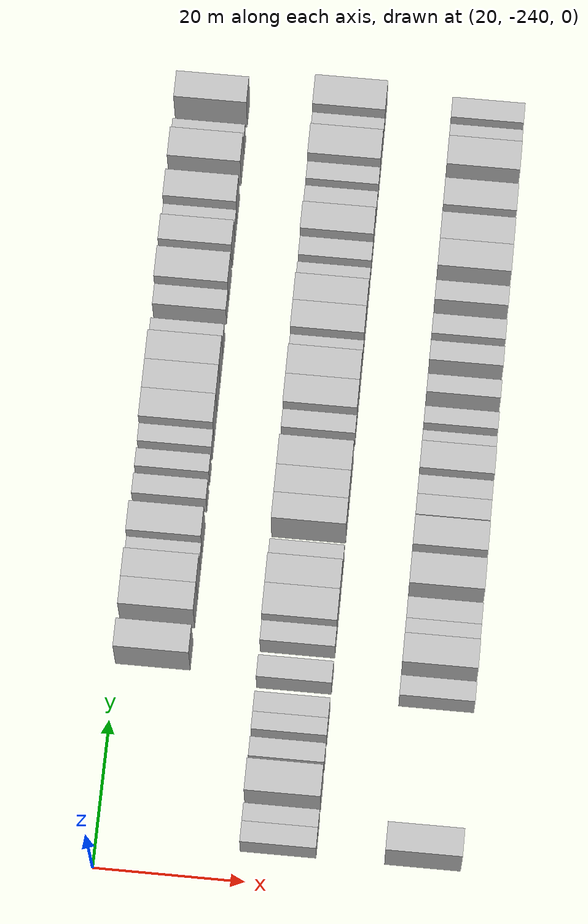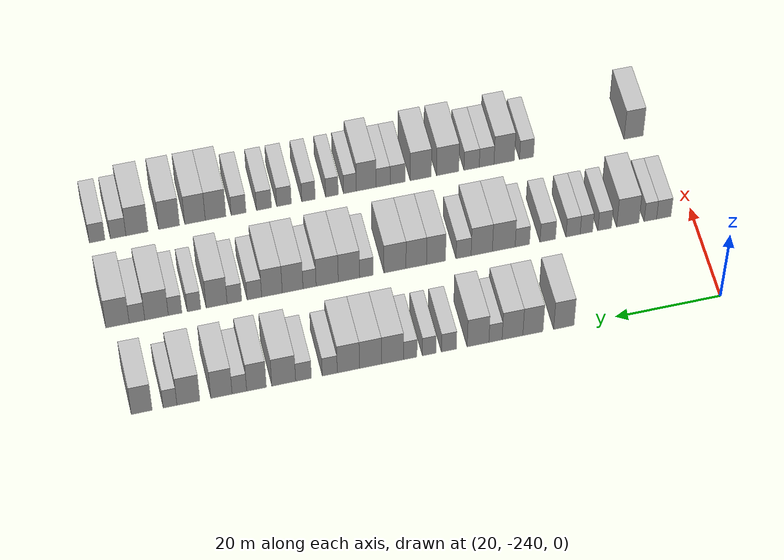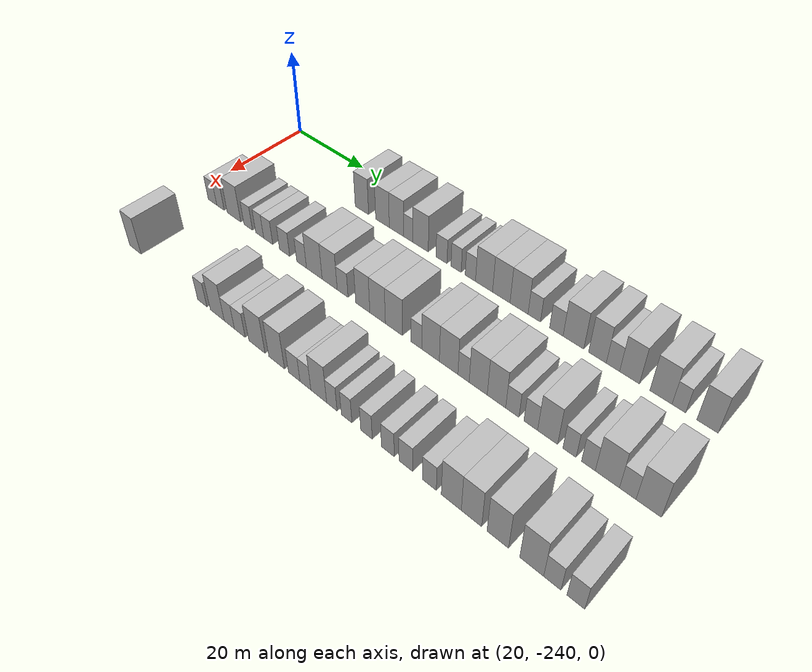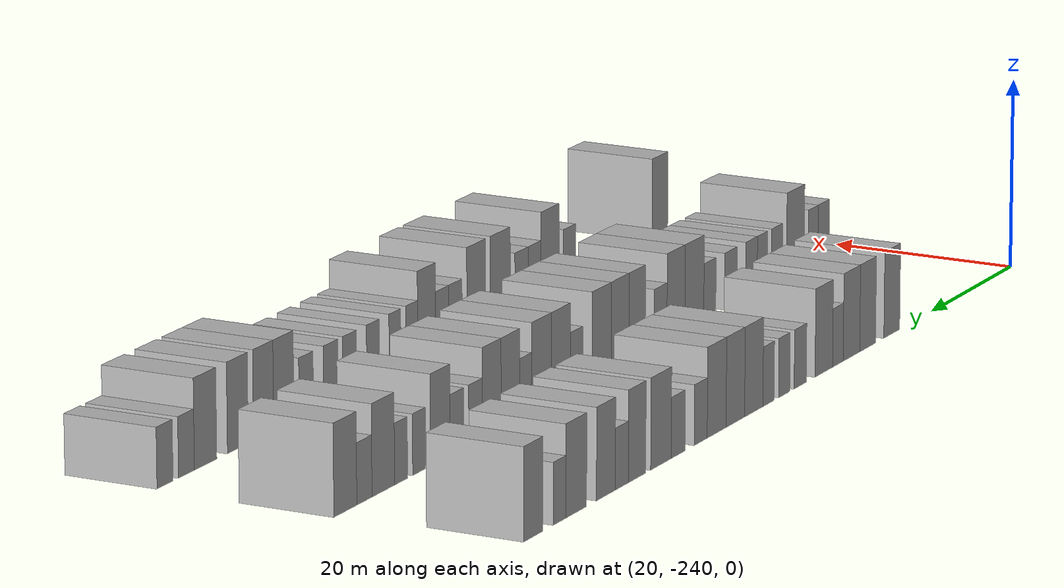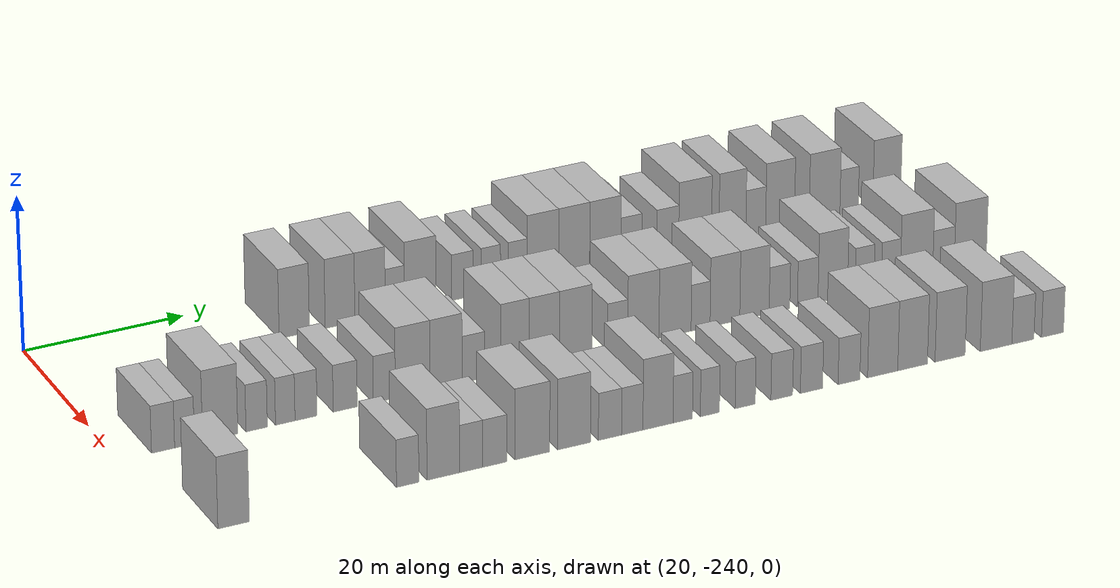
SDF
<sdf version="1.6">
 <world name="default">
  <model name="building_1">
   <static>1</static>
   <pose>25.0000 -210.2446 0 0.000000 0.000000 0.000000</pose>
   <link name="link">
    <pose>0 0 4.50 0 0 0</pose>
    <collision name="collision"><geometry><box><size>10.0000 3.8369 9.0000</size></box></geometry></collision>
    <visual name="visual">
     <cast_shadows>0</cast_shadows>
     <geometry><box><size>10.0000 3.8369 9.0000</size></box></geometry>
     <material>
      <script>
       <uri>model://HANNAS_wall/materials/scripts</uri>
       <uri>model://HANNAS_wall/materials/textures</uri>
       <name>vrc/HANNAS_wall</name>
      </script>
     </material>
    </visual>
   </link>
  </model>
  <model name="building_2">
   <static>1</static>
   <pose>25.0000 -204.4318 0 0.000000 0.000000 0.000000</pose>
   <link name="link">
    <pose>0 0 4.50 0 0 0</pose>
    <collision name="collision"><geometry><box><size>10.0000 3.7886 9.0000</size></box></geometry></collision>
    <visual name="visual">
     <cast_shadows>0</cast_shadows>
     <geometry><box><size>10.0000 3.7886 9.0000</size></box></geometry>
     <material>
      <script>
       <uri>model://HANNAS_wall/materials/scripts</uri>
       <uri>model://HANNAS_wall/materials/textures</uri>
       <name>vrc/HANNAS_wall</name>
      </script>
     </material>
    </visual>
   </link>
  </model>
  <model name="building_3">
   <static>1</static>
   <pose>25.0000 -200.5915 0 0.000000 0.000000 0.000000</pose>
   <link name="link">
    <pose>0 0 4.50 0 0 0</pose>
    <collision name="collision"><geometry><box><size>10.0000 3.8921 9.0000</size></box></geometry></collision>
    <visual name="visual">
     <cast_shadows>0</cast_shadows>
     <geometry><box><size>10.0000 3.8921 9.0000</size></box></geometry>
     <material>
      <script>
       <uri>model://HANNAS_wall/materials/scripts</uri>
       <uri>model://HANNAS_wall/materials/textures</uri>
       <name>vrc/HANNAS_wall</name>
      </script>
     </material>
    </visual>
   </link>
  </model>
  <model name="building_4">
   <static>1</static>
   <pose>25.0000 -197.4109 0 0.000000 0.000000 0.000000</pose>
   <link name="link">
    <pose>0 0 3.00 0 0 0</pose>
    <collision name="collision"><geometry><box><size>10.0000 2.4689 6.0000</size></box></geometry></collision>
    <visual name="visual">
     <cast_shadows>0</cast_shadows>
     <geometry><box><size>10.0000 2.4689 6.0000</size></box></geometry>
     <material>
      <script>
       <uri>model://HANNAS_wall/materials/scripts</uri>
       <uri>model://HANNAS_wall/materials/textures</uri>
       <name>vrc/HANNAS_wall</name>
      </script>
     </material>
    </visual>
   </link>
  </model>
  <model name="building_5">
   <static>1</static>
   <pose>25.0000 -194.1410 0 0.000000 0.000000 0.000000</pose>
   <link name="link">
    <pose>0 0 4.50 0 0 0</pose>
    <collision name="collision"><geometry><box><size>10.0000 4.0709 9.0000</size></box></geometry></collision>
    <visual name="visual">
     <cast_shadows>0</cast_shadows>
     <geometry><box><size>10.0000 4.0709 9.0000</size></box></geometry>
     <material>
      <script>
       <uri>model://HANNAS_wall/materials/scripts</uri>
       <uri>model://HANNAS_wall/materials/textures</uri>
       <name>vrc/HANNAS_wall</name>
      </script>
     </material>
    </visual>
   </link>
  </model>
  <model name="building_6">
   <static>1</static>
   <pose>25.0000 -188.7072 0 0.000000 0.000000 0.000000</pose>
   <link name="link">
    <pose>0 0 3.00 0 0 0</pose>
    <collision name="collision"><geometry><box><size>10.0000 2.7967 6.0000</size></box></geometry></collision>
    <visual name="visual">
     <cast_shadows>0</cast_shadows>
     <geometry><box><size>10.0000 2.7967 6.0000</size></box></geometry>
     <material>
      <script>
       <uri>model://HANNAS_wall/materials/scripts</uri>
       <uri>model://HANNAS_wall/materials/textures</uri>
       <name>vrc/HANNAS_wall</name>
      </script>
     </material>
    </visual>
   </link>
  </model>
  <model name="building_7">
   <static>1</static>
   <pose>25.0000 -185.0412 0 0.000000 0.000000 0.000000</pose>
   <link name="link">
    <pose>0 0 3.00 0 0 0</pose>
    <collision name="collision"><geometry><box><size>10.0000 2.5354 6.0000</size></box></geometry></collision>
    <visual name="visual">
     <cast_shadows>0</cast_shadows>
     <geometry><box><size>10.0000 2.5354 6.0000</size></box></geometry>
     <material>
      <script>
       <uri>model://HANNAS_wall/materials/scripts</uri>
       <uri>model://HANNAS_wall/materials/textures</uri>
       <name>vrc/HANNAS_wall</name>
      </script>
     </material>
    </visual>
   </link>
  </model>
  <model name="building_8">
   <static>1</static>
   <pose>25.0000 -181.5201 0 0.000000 0.000000 0.000000</pose>
   <link name="link">
    <pose>0 0 3.00 0 0 0</pose>
    <collision name="collision"><geometry><box><size>10.0000 2.5069 6.0000</size></box></geometry></collision>
    <visual name="visual">
     <cast_shadows>0</cast_shadows>
     <geometry><box><size>10.0000 2.5069 6.0000</size></box></geometry>
     <material>
      <script>
       <uri>model://HANNAS_wall/materials/scripts</uri>
       <uri>model://HANNAS_wall/materials/textures</uri>
       <name>vrc/HANNAS_wall</name>
      </script>
     </material>
    </visual>
   </link>
  </model>
  <model name="building_9">
   <static>1</static>
   <pose>25.0000 -178.2277 0 0.000000 0.000000 0.000000</pose>
   <link name="link">
    <pose>0 0 4.50 0 0 0</pose>
    <collision name="collision"><geometry><box><size>10.0000 4.0778 9.0000</size></box></geometry></collision>
    <visual name="visual">
     <cast_shadows>0</cast_shadows>
     <geometry><box><size>10.0000 4.0778 9.0000</size></box></geometry>
     <material>
      <script>
       <uri>model://HANNAS_wall/materials/scripts</uri>
       <uri>model://HANNAS_wall/materials/textures</uri>
       <name>vrc/HANNAS_wall</name>
      </script>
     </material>
    </visual>
   </link>
  </model>
  <model name="building_10">
   <static>1</static>
   <pose>25.0000 -174.1491 0 0.000000 0.000000 0.000000</pose>
   <link name="link">
    <pose>0 0 4.50 0 0 0</pose>
    <collision name="collision"><geometry><box><size>10.0000 4.0794 9.0000</size></box></geometry></collision>
    <visual name="visual">
     <cast_shadows>0</cast_shadows>
     <geometry><box><size>10.0000 4.0794 9.0000</size></box></geometry>
     <material>
      <script>
       <uri>model://HANNAS_wall/materials/scripts</uri>
       <uri>model://HANNAS_wall/materials/textures</uri>
       <name>vrc/HANNAS_wall</name>
      </script>
     </material>
    </visual>
   </link>
  </model>
  <model name="building_11">
   <static>1</static>
   <pose>25.0000 -170.0534 0 0.000000 0.000000 0.000000</pose>
   <link name="link">
    <pose>0 0 4.50 0 0 0</pose>
    <collision name="collision"><geometry><box><size>10.0000 4.1120 9.0000</size></box></geometry></collision>
    <visual name="visual">
     <cast_shadows>0</cast_shadows>
     <geometry><box><size>10.0000 4.1120 9.0000</size></box></geometry>
     <material>
      <script>
       <uri>model://HANNAS_wall/materials/scripts</uri>
       <uri>model://HANNAS_wall/materials/textures</uri>
       <name>vrc/HANNAS_wall</name>
      </script>
     </material>
    </visual>
   </link>
  </model>
  <model name="building_12">
   <static>1</static>
   <pose>25.0000 -166.6129 0 0.000000 0.000000 0.000000</pose>
   <link name="link">
    <pose>0 0 3.00 0 0 0</pose>
    <collision name="collision"><geometry><box><size>10.0000 2.7691 6.0000</size></box></geometry></collision>
    <visual name="visual">
     <cast_shadows>0</cast_shadows>
     <geometry><box><size>10.0000 2.7691 6.0000</size></box></geometry>
     <material>
      <script>
       <uri>model://HANNAS_wall/materials/scripts</uri>
       <uri>model://HANNAS_wall/materials/textures</uri>
       <name>vrc/HANNAS_wall</name>
      </script>
     </material>
    </visual>
   </link>
  </model>
  <model name="building_13">
   <static>1</static>
   <pose>25.0000 -161.7712 0 0.000000 0.000000 0.000000</pose>
   <link name="link">
    <pose>0 0 3.00 0 0 0</pose>
    <collision name="collision"><geometry><box><size>10.0000 2.9143 6.0000</size></box></geometry></collision>
    <visual name="visual">
     <cast_shadows>0</cast_shadows>
     <geometry><box><size>10.0000 2.9143 6.0000</size></box></geometry>
     <material>
      <script>
       <uri>model://HANNAS_wall/materials/scripts</uri>
       <uri>model://HANNAS_wall/materials/textures</uri>
       <name>vrc/HANNAS_wall</name>
      </script>
     </material>
    </visual>
   </link>
  </model>
  <model name="building_14">
   <static>1</static>
   <pose>25.0000 -158.1254 0 0.000000 0.000000 0.000000</pose>
   <link name="link">
    <pose>0 0 4.50 0 0 0</pose>
    <collision name="collision"><geometry><box><size>10.0000 4.3773 9.0000</size></box></geometry></collision>
    <visual name="visual">
     <cast_shadows>0</cast_shadows>
     <geometry><box><size>10.0000 4.3773 9.0000</size></box></geometry>
     <material>
      <script>
       <uri>model://HANNAS_wall/materials/scripts</uri>
       <uri>model://HANNAS_wall/materials/textures</uri>
       <name>vrc/HANNAS_wall</name>
      </script>
     </material>
    </visual>
   </link>
  </model>
  <model name="building_15">
   <static>1</static>
   <pose>25.0000 -153.1305 0 0.000000 0.000000 0.000000</pose>
   <link name="link">
    <pose>0 0 4.50 0 0 0</pose>
    <collision name="collision"><geometry><box><size>10.0000 3.6125 9.0000</size></box></geometry></collision>
    <visual name="visual">
     <cast_shadows>0</cast_shadows>
     <geometry><box><size>10.0000 3.6125 9.0000</size></box></geometry>
     <material>
      <script>
       <uri>model://HANNAS_wall/materials/scripts</uri>
       <uri>model://HANNAS_wall/materials/textures</uri>
       <name>vrc/HANNAS_wall</name>
      </script>
     </material>
    </visual>
   </link>
  </model>
  <model name="building_16">
   <static>1</static>
   <pose>25.0000 -149.9911 0 0.000000 0.000000 0.000000</pose>
   <link name="link">
    <pose>0 0 3.00 0 0 0</pose>
    <collision name="collision"><geometry><box><size>10.0000 2.6663 6.0000</size></box></geometry></collision>
    <visual name="visual">
     <cast_shadows>0</cast_shadows>
     <geometry><box><size>10.0000 2.6663 6.0000</size></box></geometry>
     <material>
      <script>
       <uri>model://HANNAS_wall/materials/scripts</uri>
       <uri>model://HANNAS_wall/materials/textures</uri>
       <name>vrc/HANNAS_wall</name>
      </script>
     </material>
    </visual>
   </link>
  </model>
  <model name="building_17">
   <static>1</static>
   <pose>25.0000 -146.7138 0 0.000000 0.000000 0.000000</pose>
   <link name="link">
    <pose>0 0 4.50 0 0 0</pose>
    <collision name="collision"><geometry><box><size>10.0000 3.8884 9.0000</size></box></geometry></collision>
    <visual name="visual">
     <cast_shadows>0</cast_shadows>
     <geometry><box><size>10.0000 3.8884 9.0000</size></box></geometry>
     <material>
      <script>
       <uri>model://HANNAS_wall/materials/scripts</uri>
       <uri>model://HANNAS_wall/materials/textures</uri>
       <name>vrc/HANNAS_wall</name>
      </script>
     </material>
    </visual>
   </link>
  </model>
  <model name="building_18">
   <static>1</static>
   <pose>25.0000 -140.6775 0 0.000000 0.000000 0.000000</pose>
   <link name="link">
    <pose>0 0 4.50 0 0 0</pose>
    <collision name="collision"><geometry><box><size>10.0000 4.1843 9.0000</size></box></geometry></collision>
    <visual name="visual">
     <cast_shadows>0</cast_shadows>
     <geometry><box><size>10.0000 4.1843 9.0000</size></box></geometry>
     <material>
      <script>
       <uri>model://HANNAS_wall/materials/scripts</uri>
       <uri>model://HANNAS_wall/materials/textures</uri>
       <name>vrc/HANNAS_wall</name>
      </script>
     </material>
    </visual>
   </link>
  </model>
  <model name="building_19">
   <static>1</static>
   <pose>25.0000 -137.3348 0 0.000000 0.000000 0.000000</pose>
   <link name="link">
    <pose>0 0 3.00 0 0 0</pose>
    <collision name="collision"><geometry><box><size>10.0000 2.5011 6.0000</size></box></geometry></collision>
    <visual name="visual">
     <cast_shadows>0</cast_shadows>
     <geometry><box><size>10.0000 2.5011 6.0000</size></box></geometry>
     <material>
      <script>
       <uri>model://HANNAS_wall/materials/scripts</uri>
       <uri>model://HANNAS_wall/materials/textures</uri>
       <name>vrc/HANNAS_wall</name>
      </script>
     </material>
    </visual>
   </link>
  </model>
  <model name="building_20">
   <static>1</static>
   <pose>25.0000 -132.1780 0 0.000000 0.000000 0.000000</pose>
   <link name="link">
    <pose>0 0 4.50 0 0 0</pose>
    <collision name="collision"><geometry><box><size>10.0000 3.8125 9.0000</size></box></geometry></collision>
    <visual name="visual">
     <cast_shadows>0</cast_shadows>
     <geometry><box><size>10.0000 3.8125 9.0000</size></box></geometry>
     <material>
      <script>
       <uri>model://HANNAS_wall/materials/scripts</uri>
       <uri>model://HANNAS_wall/materials/textures</uri>
       <name>vrc/HANNAS_wall</name>
      </script>
     </material>
    </visual>
   </link>
  </model>
  <model name="building_120">
   <static>1</static>
   <pose>44.0000 -234.6004 0 0.000000 0.000000 0.000000</pose>
   <link name="link">
    <pose>0 0 3.00 0 0 0</pose>
    <collision name="collision"><geometry><box><size>10.0000 2.7992 6.0000</size></box></geometry></collision>
    <visual name="visual">
     <cast_shadows>0</cast_shadows>
     <geometry><box><size>10.0000 2.7992 6.0000</size></box></geometry>
     <material>
      <script>
       <uri>model://HANNAS_wall/materials/scripts</uri>
       <uri>model://HANNAS_wall/materials/textures</uri>
       <name>vrc/HANNAS_wall</name>
      </script>
     </material>
    </visual>
   </link>
  </model>
  <model name="building_121">
   <static>1</static>
   <pose>44.0000 -231.9981 0 0.000000 0.000000 0.000000</pose>
   <link name="link">
    <pose>0 0 3.00 0 0 0</pose>
    <collision name="collision"><geometry><box><size>10.0000 2.4055 6.0000</size></box></geometry></collision>
    <visual name="visual">
     <cast_shadows>0</cast_shadows>
     <geometry><box><size>10.0000 2.4055 6.0000</size></box></geometry>
     <material>
      <script>
       <uri>model://HANNAS_wall/materials/scripts</uri>
       <uri>model://HANNAS_wall/materials/textures</uri>
       <name>vrc/HANNAS_wall</name>
      </script>
     </material>
    </visual>
   </link>
  </model>
  <model name="building_122">
   <static>1</static>
   <pose>44.0000 -227.6444 0 0.000000 0.000000 0.000000</pose>
   <link name="link">
    <pose>0 0 4.50 0 0 0</pose>
    <collision name="collision"><geometry><box><size>10.0000 4.3019 9.0000</size></box></geometry></collision>
    <visual name="visual">
     <cast_shadows>0</cast_shadows>
     <geometry><box><size>10.0000 4.3019 9.0000</size></box></geometry>
     <material>
      <script>
       <uri>model://HANNAS_wall/materials/scripts</uri>
       <uri>model://HANNAS_wall/materials/textures</uri>
       <name>vrc/HANNAS_wall</name>
      </script>
     </material>
    </visual>
   </link>
  </model>
  <model name="building_123">
   <static>1</static>
   <pose>44.0000 -223.1810 0 0.000000 0.000000 0.000000</pose>
   <link name="link">
    <pose>0 0 3.00 0 0 0</pose>
    <collision name="collision"><geometry><box><size>10.0000 2.6249 6.0000</size></box></geometry></collision>
    <visual name="visual">
     <cast_shadows>0</cast_shadows>
     <geometry><box><size>10.0000 2.6249 6.0000</size></box></geometry>
     <material>
      <script>
       <uri>model://HANNAS_wall/materials/scripts</uri>
       <uri>model://HANNAS_wall/materials/textures</uri>
       <name>vrc/HANNAS_wall</name>
      </script>
     </material>
    </visual>
   </link>
  </model>
  <model name="building_124">
   <static>1</static>
   <pose>44.0000 -219.6663 0 0.000000 0.000000 0.000000</pose>
   <link name="link">
    <pose>0 0 3.00 0 0 0</pose>
    <collision name="collision"><geometry><box><size>10.0000 2.4046 6.0000</size></box></geometry></collision>
    <visual name="visual">
     <cast_shadows>0</cast_shadows>
     <geometry><box><size>10.0000 2.4046 6.0000</size></box></geometry>
     <material>
      <script>
       <uri>model://HANNAS_wall/materials/scripts</uri>
       <uri>model://HANNAS_wall/materials/textures</uri>
       <name>vrc/HANNAS_wall</name>
      </script>
     </material>
    </visual>
   </link>
  </model>
  <model name="building_125">
   <static>1</static>
   <pose>44.0000 -217.1004 0 0.000000 0.000000 0.000000</pose>
   <link name="link">
    <pose>0 0 3.00 0 0 0</pose>
    <collision name="collision"><geometry><box><size>10.0000 2.7271 6.0000</size></box></geometry></collision>
    <visual name="visual">
     <cast_shadows>0</cast_shadows>
     <geometry><box><size>10.0000 2.7271 6.0000</size></box></geometry>
     <material>
      <script>
       <uri>model://HANNAS_wall/materials/scripts</uri>
       <uri>model://HANNAS_wall/materials/textures</uri>
       <name>vrc/HANNAS_wall</name>
      </script>
     </material>
    </visual>
   </link>
  </model>
  <model name="building_126">
   <static>1</static>
   <pose>44.0000 -212.2465 0 0.000000 0.000000 0.000000</pose>
   <link name="link">
    <pose>0 0 3.00 0 0 0</pose>
    <collision name="collision"><geometry><box><size>10.0000 2.9808 6.0000</size></box></geometry></collision>
    <visual name="visual">
     <cast_shadows>0</cast_shadows>
     <geometry><box><size>10.0000 2.9808 6.0000</size></box></geometry>
     <material>
      <script>
       <uri>model://HANNAS_wall/materials/scripts</uri>
       <uri>model://HANNAS_wall/materials/textures</uri>
       <name>vrc/HANNAS_wall</name>
      </script>
     </material>
    </visual>
   </link>
  </model>
  <model name="building_127">
   <static>1</static>
   <pose>44.0000 -207.3763 0 0.000000 0.000000 0.000000</pose>
   <link name="link">
    <pose>0 0 3.00 0 0 0</pose>
    <collision name="collision"><geometry><box><size>10.0000 2.7595 6.0000</size></box></geometry></collision>
    <visual name="visual">
     <cast_shadows>0</cast_shadows>
     <geometry><box><size>10.0000 2.7595 6.0000</size></box></geometry>
     <material>
      <script>
       <uri>model://HANNAS_wall/materials/scripts</uri>
       <uri>model://HANNAS_wall/materials/textures</uri>
       <name>vrc/HANNAS_wall</name>
      </script>
     </material>
    </visual>
   </link>
  </model>
  <model name="building_128">
   <static>1</static>
   <pose>44.0000 -203.8223 0 0.000000 0.000000 0.000000</pose>
   <link name="link">
    <pose>0 0 4.50 0 0 0</pose>
    <collision name="collision"><geometry><box><size>10.0000 4.3486 9.0000</size></box></geometry></collision>
    <visual name="visual">
     <cast_shadows>0</cast_shadows>
     <geometry><box><size>10.0000 4.3486 9.0000</size></box></geometry>
     <material>
      <script>
       <uri>model://HANNAS_wall/materials/scripts</uri>
       <uri>model://HANNAS_wall/materials/textures</uri>
       <name>vrc/HANNAS_wall</name>
      </script>
     </material>
    </visual>
   </link>
  </model>
  <model name="building_129">
   <static>1</static>
   <pose>44.0000 -199.6204 0 0.000000 0.000000 0.000000</pose>
   <link name="link">
    <pose>0 0 4.50 0 0 0</pose>
    <collision name="collision"><geometry><box><size>10.0000 4.0551 9.0000</size></box></geometry></collision>
    <visual name="visual">
     <cast_shadows>0</cast_shadows>
     <geometry><box><size>10.0000 4.0551 9.0000</size></box></geometry>
     <material>
      <script>
       <uri>model://HANNAS_wall/materials/scripts</uri>
       <uri>model://HANNAS_wall/materials/textures</uri>
       <name>vrc/HANNAS_wall</name>
      </script>
     </material>
    </visual>
   </link>
  </model>
  <model name="building_130">
   <static>1</static>
   <pose>44.0000 -196.1625 0 0.000000 0.000000 0.000000</pose>
   <link name="link">
    <pose>0 0 3.00 0 0 0</pose>
    <collision name="collision"><geometry><box><size>10.0000 2.8607 6.0000</size></box></geometry></collision>
    <visual name="visual">
     <cast_shadows>0</cast_shadows>
     <geometry><box><size>10.0000 2.8607 6.0000</size></box></geometry>
     <material>
      <script>
       <uri>model://HANNAS_wall/materials/scripts</uri>
       <uri>model://HANNAS_wall/materials/textures</uri>
       <name>vrc/HANNAS_wall</name>
      </script>
     </material>
    </visual>
   </link>
  </model>
  <model name="building_131">
   <static>1</static>
   <pose>44.0000 -190.9226 0 0.000000 0.000000 0.000000</pose>
   <link name="link">
    <pose>0 0 4.50 0 0 0</pose>
    <collision name="collision"><geometry><box><size>10.0000 3.6192 9.0000</size></box></geometry></collision>
    <visual name="visual">
     <cast_shadows>0</cast_shadows>
     <geometry><box><size>10.0000 3.6192 9.0000</size></box></geometry>
     <material>
      <script>
       <uri>model://HANNAS_wall/materials/scripts</uri>
       <uri>model://HANNAS_wall/materials/textures</uri>
       <name>vrc/HANNAS_wall</name>
      </script>
     </material>
    </visual>
   </link>
  </model>
  <model name="building_132">
   <static>1</static>
   <pose>44.0000 -187.1712 0 0.000000 0.000000 0.000000</pose>
   <link name="link">
    <pose>0 0 4.50 0 0 0</pose>
    <collision name="collision"><geometry><box><size>10.0000 3.8834 9.0000</size></box></geometry></collision>
    <visual name="visual">
     <cast_shadows>0</cast_shadows>
     <geometry><box><size>10.0000 3.8834 9.0000</size></box></geometry>
     <material>
      <script>
       <uri>model://HANNAS_wall/materials/scripts</uri>
       <uri>model://HANNAS_wall/materials/textures</uri>
       <name>vrc/HANNAS_wall</name>
      </script>
     </material>
    </visual>
   </link>
  </model>
  <model name="building_133">
   <static>1</static>
   <pose>44.0000 -183.1477 0 0.000000 0.000000 0.000000</pose>
   <link name="link">
    <pose>0 0 4.50 0 0 0</pose>
    <collision name="collision"><geometry><box><size>10.0000 4.1638 9.0000</size></box></geometry></collision>
    <visual name="visual">
     <cast_shadows>0</cast_shadows>
     <geometry><box><size>10.0000 4.1638 9.0000</size></box></geometry>
     <material>
      <script>
       <uri>model://HANNAS_wall/materials/scripts</uri>
       <uri>model://HANNAS_wall/materials/textures</uri>
       <name>vrc/HANNAS_wall</name>
      </script>
     </material>
    </visual>
   </link>
  </model>
  <model name="building_134">
   <static>1</static>
   <pose>44.0000 -177.7693 0 0.000000 0.000000 0.000000</pose>
   <link name="link">
    <pose>0 0 3.00 0 0 0</pose>
    <collision name="collision"><geometry><box><size>10.0000 2.5930 6.0000</size></box></geometry></collision>
    <visual name="visual">
     <cast_shadows>0</cast_shadows>
     <geometry><box><size>10.0000 2.5930 6.0000</size></box></geometry>
     <material>
      <script>
       <uri>model://HANNAS_wall/materials/scripts</uri>
       <uri>model://HANNAS_wall/materials/textures</uri>
       <name>vrc/HANNAS_wall</name>
      </script>
     </material>
    </visual>
   </link>
  </model>
  <model name="building_135">
   <static>1</static>
   <pose>44.0000 -174.4574 0 0.000000 0.000000 0.000000</pose>
   <link name="link">
    <pose>0 0 4.50 0 0 0</pose>
    <collision name="collision"><geometry><box><size>10.0000 4.0307 9.0000</size></box></geometry></collision>
    <visual name="visual">
     <cast_shadows>0</cast_shadows>
     <geometry><box><size>10.0000 4.0307 9.0000</size></box></geometry>
     <material>
      <script>
       <uri>model://HANNAS_wall/materials/scripts</uri>
       <uri>model://HANNAS_wall/materials/textures</uri>
       <name>vrc/HANNAS_wall</name>
      </script>
     </material>
    </visual>
   </link>
  </model>
  <model name="building_136">
   <static>1</static>
   <pose>44.0000 -170.3583 0 0.000000 0.000000 0.000000</pose>
   <link name="link">
    <pose>0 0 4.50 0 0 0</pose>
    <collision name="collision"><geometry><box><size>10.0000 4.1676 9.0000</size></box></geometry></collision>
    <visual name="visual">
     <cast_shadows>0</cast_shadows>
     <geometry><box><size>10.0000 4.1676 9.0000</size></box></geometry>
     <material>
      <script>
       <uri>model://HANNAS_wall/materials/scripts</uri>
       <uri>model://HANNAS_wall/materials/textures</uri>
       <name>vrc/HANNAS_wall</name>
      </script>
     </material>
    </visual>
   </link>
  </model>
  <model name="building_137">
   <static>1</static>
   <pose>44.0000 -167.0417 0 0.000000 0.000000 0.000000</pose>
   <link name="link">
    <pose>0 0 3.00 0 0 0</pose>
    <collision name="collision"><geometry><box><size>10.0000 2.4656 6.0000</size></box></geometry></collision>
    <visual name="visual">
     <cast_shadows>0</cast_shadows>
     <geometry><box><size>10.0000 2.4656 6.0000</size></box></geometry>
     <material>
      <script>
       <uri>model://HANNAS_wall/materials/scripts</uri>
       <uri>model://HANNAS_wall/materials/textures</uri>
       <name>vrc/HANNAS_wall</name>
      </script>
     </material>
    </visual>
   </link>
  </model>
  <model name="building_138">
   <static>1</static>
   <pose>44.0000 -163.8644 0 0.000000 0.000000 0.000000</pose>
   <link name="link">
    <pose>0 0 4.50 0 0 0</pose>
    <collision name="collision"><geometry><box><size>10.0000 3.8889 9.0000</size></box></geometry></collision>
    <visual name="visual">
     <cast_shadows>0</cast_shadows>
     <geometry><box><size>10.0000 3.8889 9.0000</size></box></geometry>
     <material>
      <script>
       <uri>model://HANNAS_wall/materials/scripts</uri>
       <uri>model://HANNAS_wall/materials/textures</uri>
       <name>vrc/HANNAS_wall</name>
      </script>
     </material>
    </visual>
   </link>
  </model>
  <model name="building_139">
   <static>1</static>
   <pose>44.0000 -159.9904 0 0.000000 0.000000 0.000000</pose>
   <link name="link">
    <pose>0 0 4.50 0 0 0</pose>
    <collision name="collision"><geometry><box><size>10.0000 3.8590 9.0000</size></box></geometry></collision>
    <visual name="visual">
     <cast_shadows>0</cast_shadows>
     <geometry><box><size>10.0000 3.8590 9.0000</size></box></geometry>
     <material>
      <script>
       <uri>model://HANNAS_wall/materials/scripts</uri>
       <uri>model://HANNAS_wall/materials/textures</uri>
       <name>vrc/HANNAS_wall</name>
      </script>
     </material>
    </visual>
   </link>
  </model>
  <model name="building_140">
   <static>1</static>
   <pose>44.0000 -156.7009 0 0.000000 0.000000 0.000000</pose>
   <link name="link">
    <pose>0 0 3.00 0 0 0</pose>
    <collision name="collision"><geometry><box><size>10.0000 2.7201 6.0000</size></box></geometry></collision>
    <visual name="visual">
     <cast_shadows>0</cast_shadows>
     <geometry><box><size>10.0000 2.7201 6.0000</size></box></geometry>
     <material>
      <script>
       <uri>model://HANNAS_wall/materials/scripts</uri>
       <uri>model://HANNAS_wall/materials/textures</uri>
       <name>vrc/HANNAS_wall</name>
      </script>
     </material>
    </visual>
   </link>
  </model>
  <model name="building_141">
   <static>1</static>
   <pose>44.0000 -152.9774 0 0.000000 0.000000 0.000000</pose>
   <link name="link">
    <pose>0 0 3.00 0 0 0</pose>
    <collision name="collision"><geometry><box><size>10.0000 2.7269 6.0000</size></box></geometry></collision>
    <visual name="visual">
     <cast_shadows>0</cast_shadows>
     <geometry><box><size>10.0000 2.7269 6.0000</size></box></geometry>
     <material>
      <script>
       <uri>model://HANNAS_wall/materials/scripts</uri>
       <uri>model://HANNAS_wall/materials/textures</uri>
       <name>vrc/HANNAS_wall</name>
      </script>
     </material>
    </visual>
   </link>
  </model>
  <model name="building_142">
   <static>1</static>
   <pose>44.0000 -149.6601 0 0.000000 0.000000 0.000000</pose>
   <link name="link">
    <pose>0 0 4.50 0 0 0</pose>
    <collision name="collision"><geometry><box><size>10.0000 3.9078 9.0000</size></box></geometry></collision>
    <visual name="visual">
     <cast_shadows>0</cast_shadows>
     <geometry><box><size>10.0000 3.9078 9.0000</size></box></geometry>
     <material>
      <script>
       <uri>model://HANNAS_wall/materials/scripts</uri>
       <uri>model://HANNAS_wall/materials/textures</uri>
       <name>vrc/HANNAS_wall</name>
      </script>
     </material>
    </visual>
   </link>
  </model>
  <model name="building_143">
   <static>1</static>
   <pose>44.0000 -145.4485 0 0.000000 0.000000 0.000000</pose>
   <link name="link">
    <pose>0 0 3.00 0 0 0</pose>
    <collision name="collision"><geometry><box><size>10.0000 2.5153 6.0000</size></box></geometry></collision>
    <visual name="visual">
     <cast_shadows>0</cast_shadows>
     <geometry><box><size>10.0000 2.5153 6.0000</size></box></geometry>
     <material>
      <script>
       <uri>model://HANNAS_wall/materials/scripts</uri>
       <uri>model://HANNAS_wall/materials/textures</uri>
       <name>vrc/HANNAS_wall</name>
      </script>
     </material>
    </visual>
   </link>
  </model>
  <model name="building_144">
   <static>1</static>
   <pose>44.0000 -141.9233 0 0.000000 0.000000 0.000000</pose>
   <link name="link">
    <pose>0 0 3.00 0 0 0</pose>
    <collision name="collision"><geometry><box><size>10.0000 2.5351 6.0000</size></box></geometry></collision>
    <visual name="visual">
     <cast_shadows>0</cast_shadows>
     <geometry><box><size>10.0000 2.5351 6.0000</size></box></geometry>
     <material>
      <script>
       <uri>model://HANNAS_wall/materials/scripts</uri>
       <uri>model://HANNAS_wall/materials/textures</uri>
       <name>vrc/HANNAS_wall</name>
      </script>
     </material>
    </visual>
   </link>
  </model>
  <model name="building_145">
   <static>1</static>
   <pose>44.0000 -138.4812 0 0.000000 0.000000 0.000000</pose>
   <link name="link">
    <pose>0 0 4.50 0 0 0</pose>
    <collision name="collision"><geometry><box><size>10.0000 4.3490 9.0000</size></box></geometry></collision>
    <visual name="visual">
     <cast_shadows>0</cast_shadows>
     <geometry><box><size>10.0000 4.3490 9.0000</size></box></geometry>
     <material>
      <script>
       <uri>model://HANNAS_wall/materials/scripts</uri>
       <uri>model://HANNAS_wall/materials/textures</uri>
       <name>vrc/HANNAS_wall</name>
      </script>
     </material>
    </visual>
   </link>
  </model>
  <model name="building_146">
   <static>1</static>
   <pose>44.0000 -134.8600 0 0.000000 0.000000 0.000000</pose>
   <link name="link">
    <pose>0 0 3.00 0 0 0</pose>
    <collision name="collision"><geometry><box><size>10.0000 2.8935 6.0000</size></box></geometry></collision>
    <visual name="visual">
     <cast_shadows>0</cast_shadows>
     <geometry><box><size>10.0000 2.8935 6.0000</size></box></geometry>
     <material>
      <script>
       <uri>model://HANNAS_wall/materials/scripts</uri>
       <uri>model://HANNAS_wall/materials/textures</uri>
       <name>vrc/HANNAS_wall</name>
      </script>
     </material>
    </visual>
   </link>
  </model>
  <model name="building_147">
   <static>1</static>
   <pose>44.0000 -131.2463 0 0.000000 0.000000 0.000000</pose>
   <link name="link">
    <pose>0 0 4.50 0 0 0</pose>
    <collision name="collision"><geometry><box><size>10.0000 4.3339 9.0000</size></box></geometry></collision>
    <visual name="visual">
     <cast_shadows>0</cast_shadows>
     <geometry><box><size>10.0000 4.3339 9.0000</size></box></geometry>
     <material>
      <script>
       <uri>model://HANNAS_wall/materials/scripts</uri>
       <uri>model://HANNAS_wall/materials/textures</uri>
       <name>vrc/HANNAS_wall</name>
      </script>
     </material>
    </visual>
   </link>
  </model>
  <model name="building_242">
   <static>1</static>
   <pose>63.0000 -234.1205 0 0.000000 0.000000 0.000000</pose>
   <link name="link">
    <pose>0 0 4.50 0 0 0</pose>
    <collision name="collision"><geometry><box><size>10.0000 3.7590 9.0000</size></box></geometry></collision>
    <visual name="visual">
     <cast_shadows>0</cast_shadows>
     <geometry><box><size>10.0000 3.7590 9.0000</size></box></geometry>
     <material>
      <script>
       <uri>model://HANNAS_wall/materials/scripts</uri>
       <uri>model://HANNAS_wall/materials/textures</uri>
       <name>vrc/HANNAS_wall</name>
      </script>
     </material>
    </visual>
   </link>
  </model>
  <model name="building_243">
   <static>1</static>
   <pose>63.0000 -213.1363 0 0.000000 0.000000 0.000000</pose>
   <link name="link">
    <pose>0 0 3.00 0 0 0</pose>
    <collision name="collision"><geometry><box><size>10.0000 2.7365 6.0000</size></box></geometry></collision>
    <visual name="visual">
     <cast_shadows>0</cast_shadows>
     <geometry><box><size>10.0000 2.7365 6.0000</size></box></geometry>
     <material>
      <script>
       <uri>model://HANNAS_wall/materials/scripts</uri>
       <uri>model://HANNAS_wall/materials/textures</uri>
       <name>vrc/HANNAS_wall</name>
      </script>
     </material>
    </visual>
   </link>
  </model>
  <model name="building_244">
   <static>1</static>
   <pose>63.0000 -208.7731 0 0.000000 0.000000 0.000000</pose>
   <link name="link">
    <pose>0 0 4.50 0 0 0</pose>
    <collision name="collision"><geometry><box><size>10.0000 3.9898 9.0000</size></box></geometry></collision>
    <visual name="visual">
     <cast_shadows>0</cast_shadows>
     <geometry><box><size>10.0000 3.9898 9.0000</size></box></geometry>
     <material>
      <script>
       <uri>model://HANNAS_wall/materials/scripts</uri>
       <uri>model://HANNAS_wall/materials/textures</uri>
       <name>vrc/HANNAS_wall</name>
      </script>
     </material>
    </visual>
   </link>
  </model>
  <model name="building_245">
   <static>1</static>
   <pose>63.0000 -205.3517 0 0.000000 0.000000 0.000000</pose>
   <link name="link">
    <pose>0 0 3.00 0 0 0</pose>
    <collision name="collision"><geometry><box><size>10.0000 2.8531 6.0000</size></box></geometry></collision>
    <visual name="visual">
     <cast_shadows>0</cast_shadows>
     <geometry><box><size>10.0000 2.8531 6.0000</size></box></geometry>
     <material>
      <script>
       <uri>model://HANNAS_wall/materials/scripts</uri>
       <uri>model://HANNAS_wall/materials/textures</uri>
       <name>vrc/HANNAS_wall</name>
      </script>
     </material>
    </visual>
   </link>
  </model>
  <model name="building_246">
   <static>1</static>
   <pose>63.0000 -202.4452 0 0.000000 0.000000 0.000000</pose>
   <link name="link">
    <pose>0 0 3.00 0 0 0</pose>
    <collision name="collision"><geometry><box><size>10.0000 2.9598 6.0000</size></box></geometry></collision>
    <visual name="visual">
     <cast_shadows>0</cast_shadows>
     <geometry><box><size>10.0000 2.9598 6.0000</size></box></geometry>
     <material>
      <script>
       <uri>model://HANNAS_wall/materials/scripts</uri>
       <uri>model://HANNAS_wall/materials/textures</uri>
       <name>vrc/HANNAS_wall</name>
      </script>
     </material>
    </visual>
   </link>
  </model>
  <model name="building_247">
   <static>1</static>
   <pose>63.0000 -197.7993 0 0.000000 0.000000 0.000000</pose>
   <link name="link">
    <pose>0 0 4.50 0 0 0</pose>
    <collision name="collision"><geometry><box><size>10.0000 4.3319 9.0000</size></box></geometry></collision>
    <visual name="visual">
     <cast_shadows>0</cast_shadows>
     <geometry><box><size>10.0000 4.3319 9.0000</size></box></geometry>
     <material>
      <script>
       <uri>model://HANNAS_wall/materials/scripts</uri>
       <uri>model://HANNAS_wall/materials/textures</uri>
       <name>vrc/HANNAS_wall</name>
      </script>
     </material>
    </visual>
   </link>
  </model>
  <model name="building_248">
   <static>1</static>
   <pose>63.0000 -192.5999 0 0.000000 0.000000 0.000000</pose>
   <link name="link">
    <pose>0 0 4.50 0 0 0</pose>
    <collision name="collision"><geometry><box><size>10.0000 4.0668 9.0000</size></box></geometry></collision>
    <visual name="visual">
     <cast_shadows>0</cast_shadows>
     <geometry><box><size>10.0000 4.0668 9.0000</size></box></geometry>
     <material>
      <script>
       <uri>model://HANNAS_wall/materials/scripts</uri>
       <uri>model://HANNAS_wall/materials/textures</uri>
       <name>vrc/HANNAS_wall</name>
      </script>
     </material>
    </visual>
   </link>
  </model>
  <model name="building_249">
   <static>1</static>
   <pose>63.0000 -188.1188 0 0.000000 0.000000 0.000000</pose>
   <link name="link">
    <pose>0 0 3.00 0 0 0</pose>
    <collision name="collision"><geometry><box><size>10.0000 2.8955 6.0000</size></box></geometry></collision>
    <visual name="visual">
     <cast_shadows>0</cast_shadows>
     <geometry><box><size>10.0000 2.8955 6.0000</size></box></geometry>
     <material>
      <script>
       <uri>model://HANNAS_wall/materials/scripts</uri>
       <uri>model://HANNAS_wall/materials/textures</uri>
       <name>vrc/HANNAS_wall</name>
      </script>
     </material>
    </visual>
   </link>
  </model>
  <model name="building_250">
   <static>1</static>
   <pose>63.0000 -185.3245 0 0.000000 0.000000 0.000000</pose>
   <link name="link">
    <pose>0 0 3.00 0 0 0</pose>
    <collision name="collision"><geometry><box><size>10.0000 2.6931 6.0000</size></box></geometry></collision>
    <visual name="visual">
     <cast_shadows>0</cast_shadows>
     <geometry><box><size>10.0000 2.6931 6.0000</size></box></geometry>
     <material>
      <script>
       <uri>model://HANNAS_wall/materials/scripts</uri>
       <uri>model://HANNAS_wall/materials/textures</uri>
       <name>vrc/HANNAS_wall</name>
      </script>
     </material>
    </visual>
   </link>
  </model>
  <model name="building_251">
   <static>1</static>
   <pose>63.0000 -182.0734 0 0.000000 0.000000 0.000000</pose>
   <link name="link">
    <pose>0 0 4.50 0 0 0</pose>
    <collision name="collision"><geometry><box><size>10.0000 3.8090 9.0000</size></box></geometry></collision>
    <visual name="visual">
     <cast_shadows>0</cast_shadows>
     <geometry><box><size>10.0000 3.8090 9.0000</size></box></geometry>
     <material>
      <script>
       <uri>model://HANNAS_wall/materials/scripts</uri>
       <uri>model://HANNAS_wall/materials/textures</uri>
       <name>vrc/HANNAS_wall</name>
      </script>
     </material>
    </visual>
   </link>
  </model>
  <model name="building_252">
   <static>1</static>
   <pose>63.0000 -178.9427 0 0.000000 0.000000 0.000000</pose>
   <link name="link">
    <pose>0 0 3.00 0 0 0</pose>
    <collision name="collision"><geometry><box><size>10.0000 2.4525 6.0000</size></box></geometry></collision>
    <visual name="visual">
     <cast_shadows>0</cast_shadows>
     <geometry><box><size>10.0000 2.4525 6.0000</size></box></geometry>
     <material>
      <script>
       <uri>model://HANNAS_wall/materials/scripts</uri>
       <uri>model://HANNAS_wall/materials/textures</uri>
       <name>vrc/HANNAS_wall</name>
      </script>
     </material>
    </visual>
   </link>
  </model>
  <model name="building_253">
   <static>1</static>
   <pose>63.0000 -175.5025 0 0.000000 0.000000 0.000000</pose>
   <link name="link">
    <pose>0 0 3.00 0 0 0</pose>
    <collision name="collision"><geometry><box><size>10.0000 2.4279 6.0000</size></box></geometry></collision>
    <visual name="visual">
     <cast_shadows>0</cast_shadows>
     <geometry><box><size>10.0000 2.4279 6.0000</size></box></geometry>
     <material>
      <script>
       <uri>model://HANNAS_wall/materials/scripts</uri>
       <uri>model://HANNAS_wall/materials/textures</uri>
       <name>vrc/HANNAS_wall</name>
      </script>
     </material>
    </visual>
   </link>
  </model>
  <model name="building_254">
   <static>1</static>
   <pose>63.0000 -171.0015 0 0.000000 0.000000 0.000000</pose>
   <link name="link">
    <pose>0 0 3.00 0 0 0</pose>
    <collision name="collision"><geometry><box><size>10.0000 2.5742 6.0000</size></box></geometry></collision>
    <visual name="visual">
     <cast_shadows>0</cast_shadows>
     <geometry><box><size>10.0000 2.5742 6.0000</size></box></geometry>
     <material>
      <script>
       <uri>model://HANNAS_wall/materials/scripts</uri>
       <uri>model://HANNAS_wall/materials/textures</uri>
       <name>vrc/HANNAS_wall</name>
      </script>
     </material>
    </visual>
   </link>
  </model>
  <model name="building_255">
   <static>1</static>
   <pose>63.0000 -166.3222 0 0.000000 0.000000 0.000000</pose>
   <link name="link">
    <pose>0 0 3.00 0 0 0</pose>
    <collision name="collision"><geometry><box><size>10.0000 2.7843 6.0000</size></box></geometry></collision>
    <visual name="visual">
     <cast_shadows>0</cast_shadows>
     <geometry><box><size>10.0000 2.7843 6.0000</size></box></geometry>
     <material>
      <script>
       <uri>model://HANNAS_wall/materials/scripts</uri>
       <uri>model://HANNAS_wall/materials/textures</uri>
       <name>vrc/HANNAS_wall</name>
      </script>
     </material>
    </visual>
   </link>
  </model>
  <model name="building_256">
   <static>1</static>
   <pose>63.0000 -162.4970 0 0.000000 0.000000 0.000000</pose>
   <link name="link">
    <pose>0 0 3.00 0 0 0</pose>
    <collision name="collision"><geometry><box><size>10.0000 2.8660 6.0000</size></box></geometry></collision>
    <visual name="visual">
     <cast_shadows>0</cast_shadows>
     <geometry><box><size>10.0000 2.8660 6.0000</size></box></geometry>
     <material>
      <script>
       <uri>model://HANNAS_wall/materials/scripts</uri>
       <uri>model://HANNAS_wall/materials/textures</uri>
       <name>vrc/HANNAS_wall</name>
      </script>
     </material>
    </visual>
   </link>
  </model>
  <model name="building_257">
   <static>1</static>
   <pose>63.0000 -157.6518 0 0.000000 0.000000 0.000000</pose>
   <link name="link">
    <pose>0 0 3.00 0 0 0</pose>
    <collision name="collision"><geometry><box><size>10.0000 2.8245 6.0000</size></box></geometry></collision>
    <visual name="visual">
     <cast_shadows>0</cast_shadows>
     <geometry><box><size>10.0000 2.8245 6.0000</size></box></geometry>
     <material>
      <script>
       <uri>model://HANNAS_wall/materials/scripts</uri>
       <uri>model://HANNAS_wall/materials/textures</uri>
       <name>vrc/HANNAS_wall</name>
      </script>
     </material>
    </visual>
   </link>
  </model>
  <model name="building_258">
   <static>1</static>
   <pose>63.0000 -153.2765 0 0.000000 0.000000 0.000000</pose>
   <link name="link">
    <pose>0 0 4.50 0 0 0</pose>
    <collision name="collision"><geometry><box><size>10.0000 3.9261 9.0000</size></box></geometry></collision>
    <visual name="visual">
     <cast_shadows>0</cast_shadows>
     <geometry><box><size>10.0000 3.9261 9.0000</size></box></geometry>
     <material>
      <script>
       <uri>model://HANNAS_wall/materials/scripts</uri>
       <uri>model://HANNAS_wall/materials/textures</uri>
       <name>vrc/HANNAS_wall</name>
      </script>
     </material>
    </visual>
   </link>
  </model>
  <model name="building_259">
   <static>1</static>
   <pose>63.0000 -149.3734 0 0.000000 0.000000 0.000000</pose>
   <link name="link">
    <pose>0 0 4.50 0 0 0</pose>
    <collision name="collision"><geometry><box><size>10.0000 3.8801 9.0000</size></box></geometry></collision>
    <visual name="visual">
     <cast_shadows>0</cast_shadows>
     <geometry><box><size>10.0000 3.8801 9.0000</size></box></geometry>
     <material>
      <script>
       <uri>model://HANNAS_wall/materials/scripts</uri>
       <uri>model://HANNAS_wall/materials/textures</uri>
       <name>vrc/HANNAS_wall</name>
      </script>
     </material>
    </visual>
   </link>
  </model>
  <model name="building_260">
   <static>1</static>
   <pose>63.0000 -144.4582 0 0.000000 0.000000 0.000000</pose>
   <link name="link">
    <pose>0 0 4.50 0 0 0</pose>
    <collision name="collision"><geometry><box><size>10.0000 3.9505 9.0000</size></box></geometry></collision>
    <visual name="visual">
     <cast_shadows>0</cast_shadows>
     <geometry><box><size>10.0000 3.9505 9.0000</size></box></geometry>
     <material>
      <script>
       <uri>model://HANNAS_wall/materials/scripts</uri>
       <uri>model://HANNAS_wall/materials/textures</uri>
       <name>vrc/HANNAS_wall</name>
      </script>
     </material>
    </visual>
   </link>
  </model>
  <model name="building_261">
   <static>1</static>
   <pose>63.0000 -138.3913 0 0.000000 0.000000 0.000000</pose>
   <link name="link">
    <pose>0 0 4.50 0 0 0</pose>
    <collision name="collision"><geometry><box><size>10.0000 4.1832 9.0000</size></box></geometry></collision>
    <visual name="visual">
     <cast_shadows>0</cast_shadows>
     <geometry><box><size>10.0000 4.1832 9.0000</size></box></geometry>
     <material>
      <script>
       <uri>model://HANNAS_wall/materials/scripts</uri>
       <uri>model://HANNAS_wall/materials/textures</uri>
       <name>vrc/HANNAS_wall</name>
      </script>
     </material>
    </visual>
   </link>
  </model>
  <model name="building_262">
   <static>1</static>
   <pose>63.0000 -134.8336 0 0.000000 0.000000 0.000000</pose>
   <link name="link">
    <pose>0 0 3.00 0 0 0</pose>
    <collision name="collision"><geometry><box><size>10.0000 2.9323 6.0000</size></box></geometry></collision>
    <visual name="visual">
     <cast_shadows>0</cast_shadows>
     <geometry><box><size>10.0000 2.9323 6.0000</size></box></geometry>
     <material>
      <script>
       <uri>model://HANNAS_wall/materials/scripts</uri>
       <uri>model://HANNAS_wall/materials/textures</uri>
       <name>vrc/HANNAS_wall</name>
      </script>
     </material>
    </visual>
   </link>
  </model>
  <model name="building_263">
   <static>1</static>
   <pose>63.0000 -130.8969 0 0.000000 0.000000 0.000000</pose>
   <link name="link">
    <pose>0 0 3.00 0 0 0</pose>
    <collision name="collision"><geometry><box><size>10.0000 2.9410 6.0000</size></box></geometry></collision>
    <visual name="visual">
     <cast_shadows>0</cast_shadows>
     <geometry><box><size>10.0000 2.9410 6.0000</size></box></geometry>
     <material>
      <script>
       <uri>model://HANNAS_wall/materials/scripts</uri>
       <uri>model://HANNAS_wall/materials/textures</uri>
       <name>vrc/HANNAS_wall</name>
      </script>
     </material>
    </visual>
   </link>
  </model>
 </world>
</sdf>
